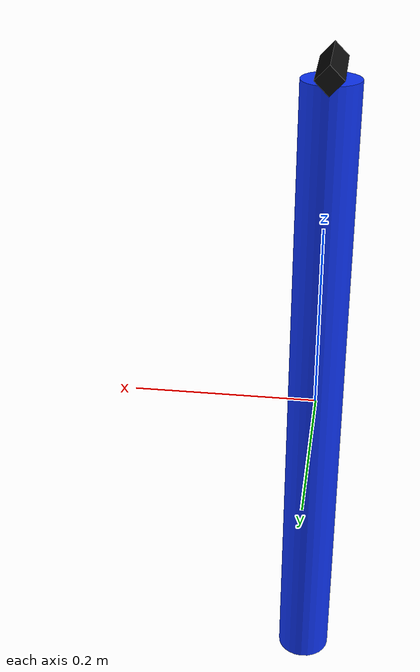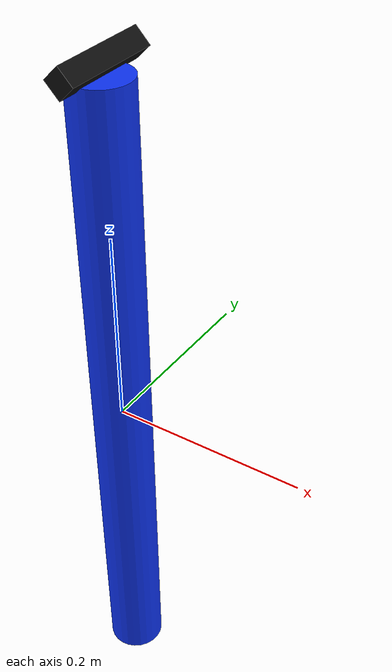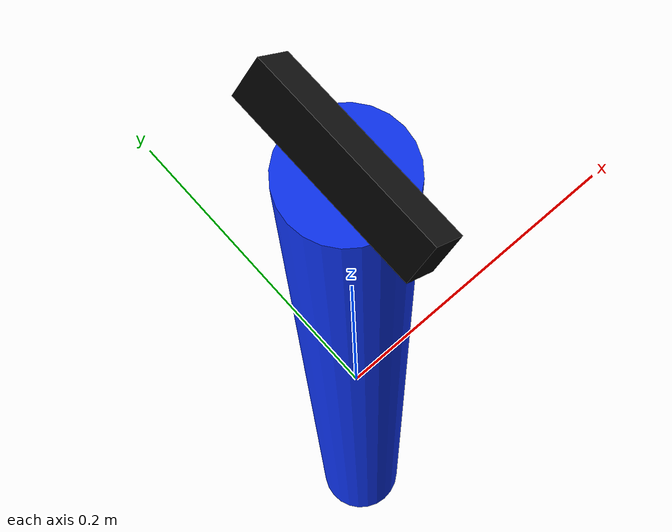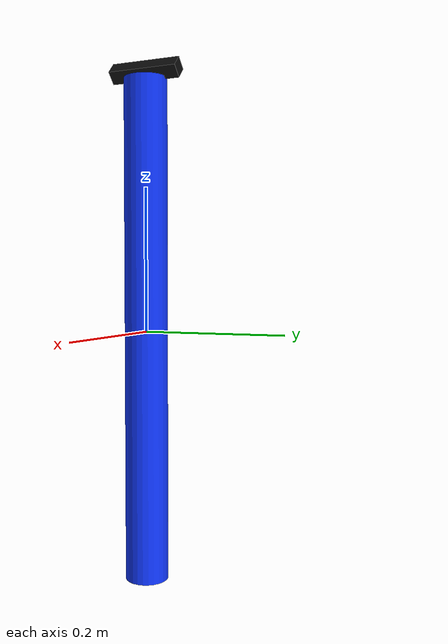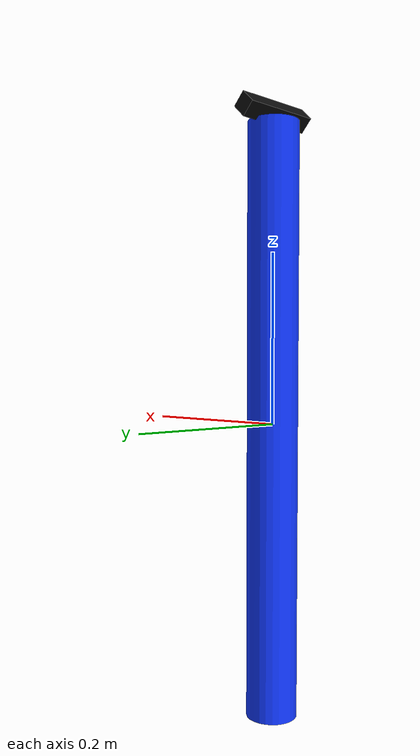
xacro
<?xml version="1.0"?>

<robot name="justina_base" xmlns:xacro="http://www.ros.org/wiki/xacro">

    <xacro:property name="torso_radius" value="0.03"/>
    <xacro:property name="torso_height" value="0.7"/>
    <xacro:property name="torso_mass" value="1.0"/>
    <xacro:property name="torso_inertia_x" value="${1.0/12.0 * torso_mass * (3*torso_radius*torso_radius + torso_height*torso_height)}"/>
    <xacro:property name="torso_inertia_y" value="${1.0/12.0 * torso_mass * (3*torso_radius*torso_radius + torso_height*torso_height)}"/>
    <xacro:property name="torso_inertia_z" value="${1.0/2.0 * torso_mass * torso_radius * torso_radius}"/>

    <!-- Left Wheel -->
    <link name="torso_link">
        <visual>
            <origin xyz="0.0 0.0 0.0" rpy="0.0 0.0 0.0"/>
            <geometry>
                <cylinder radius="${torso_radius}" length="${torso_height}"/>
            </geometry>
            <material name="torso_material">
                <color rgba="0.05 0.2 0.95 1.0"/>
            </material>
        </visual>
        <collision>
            <origin xyz="0.0 0.0 0.0" rpy="0.0 0.0 0.0"/>
            <geometry>
                <cylinder radius="${torso_radius}" length="${torso_height}"/>
            </geometry>
        </collision>
        <inertial>
            <mass value="${torso_mass}"/>
            <inertia ixx="${torso_inertia_x}" ixy="0.0" ixz="0.0" iyy="${torso_inertia_y}" iyz="0" izz="${torso_inertia_z}"/>
            <origin xyz="0.0 0.0 0.0" rpy="0.0 0.0 0.0"/>
        </inertial>
    </link>

    <link name="realsense_link">
      <visual>
        <origin xyz="0.0 0.0 0.0" rpy="0.0 0.0 0.0"/>
        <geometry>
          <box size="0.02 0.1 0.02"/>
        </geometry>
        <material name="camera_material">
          <color rgba="0.05 0.05 0.05 1.0"/>
        </material>
      </visual>
      <collision>
        <origin xyz="0.0 0.0 0.0" rpy="0.0 0.0 0.0"/>
        <geometry>
          <box size="0.02 0.1 0.02"/>
        </geometry>
      </collision>
      <inertial>
        <mass value="0.4"/>
        <inertia ixx="0.001" ixy="0.0" ixz="0.0" iyy="0.001" iyz="0" izz="0.001"/>
        <origin xyz="0.0 0.0 0.0" rpy="0.0 0.0 0.0"/>
      </inertial>
    </link>
    <joint name="torso_camera_joint" type="fixed">
      <origin xyz="0.0 0.0 0.36" rpy="0 0.8 0"/>
      <parent link="torso_link"/>
      <child link="realsense_link"/>
    </joint>

    <gazebo reference="realsense_link">
      <sensor name="camera" type="camera">
        <always_on>true</always_on>
        <visualize>true</visualize>
        <update_rate>30</update_rate>
        <topic>camera/image_raw</topic>
        <gz_frame_id>camera_rgb_frame</gz_frame_id>
        <camera name="intel_realsense_r200">
          <camera_info_topic>camera/camera_info</camera_info_topic>
          <image>
            <width>640</width>
            <height>480</height>
          </image>
          <noise>
            <type>gaussian</type>
            <mean>0.0</mean>
            <stddev>0.05</stddev>
          </noise>
        </camera>
      </sensor>
    </gazebo>

</robot>
